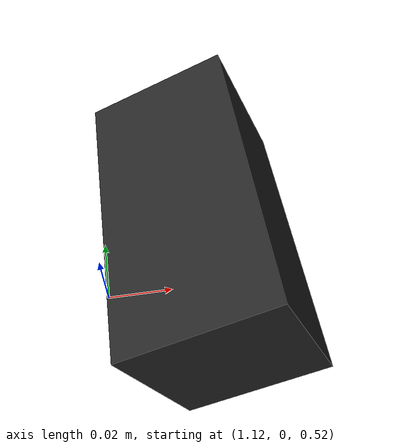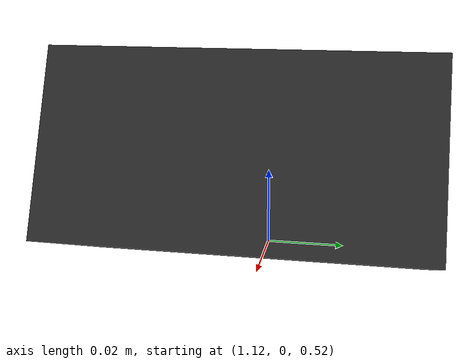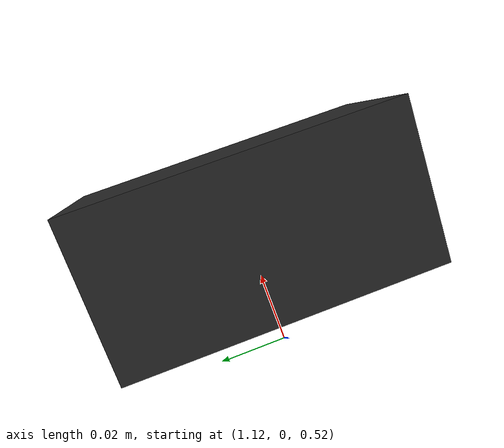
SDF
<?xml version="1.0" ?>
<sdf version="1.6">
  <world name="default">
    <!-- A global light source -->
    <include>
      <uri>model://sun</uri>
    </include>
    <!-- A ground plane -->
    <include>
      <uri>model://ground_plane</uri>
    </include>
    <physics name="default_physics" default="0" type="ode">
      <max_step_size>0.001</max_step_size>
      <real_time_factor>1</real_time_factor>
      <real_time_update_rate>1000</real_time_update_rate>
    </physics>

    <!-- Fixed dashboard camera: 1.5 m in front of the spawn point, slightly
         above robot head height, looking back at the origin. -->
    <model name="sim_camera">
      <static>true</static>
      <pose>1.15 0 0.55 0 0.42 3.14159</pose>
      <link name="sim_camera_link">
        <visual name="camera_body">
          <geometry>
            <box><size>0.04 0.08 0.04</size></box>
          </geometry>
          <material>
            <ambient>0.1 0.1 0.1 1</ambient>
            <diffuse>0.15 0.15 0.15 1</diffuse>
          </material>
        </visual>
        <sensor name="sim_camera" type="camera">
          <always_on>true</always_on>
          <update_rate>15.0</update_rate>
          <visualize>false</visualize>
          <camera>
            <horizontal_fov>1.085595</horizontal_fov>
            <image>
              <width>640</width>
              <height>480</height>
              <format>R8G8B8</format>
            </image>
            <clip>
              <near>0.05</near>
              <far>50</far>
            </clip>
          </camera>
          <plugin name="sim_camera_controller" filename="libgazebo_ros_camera.so">
            <camera_name>sim_camera</camera_name>
            <frame_name>sim_camera_link</frame_name>
          </plugin>
        </sensor>
      </link>
    </model>
  </world>
</sdf>
